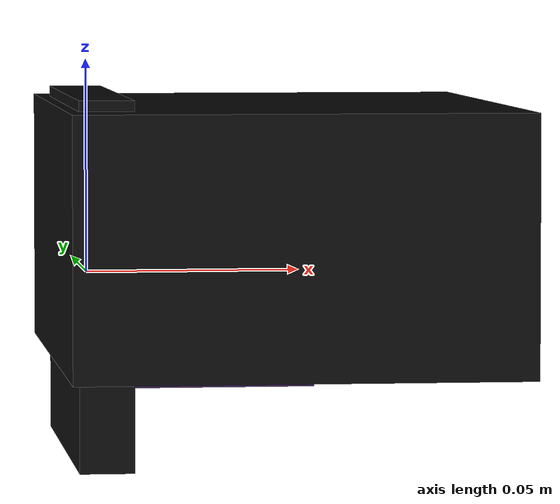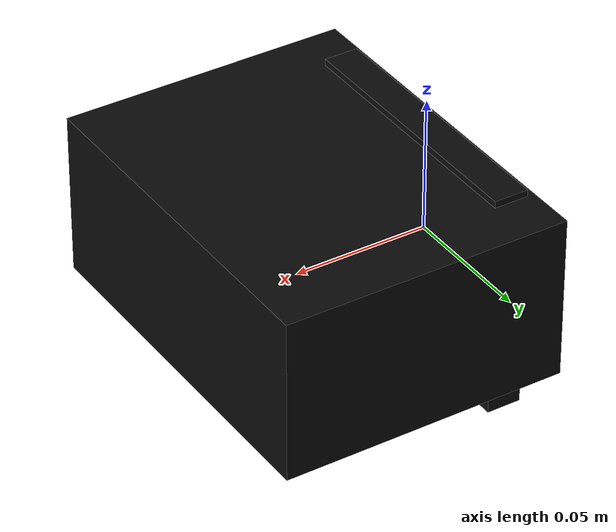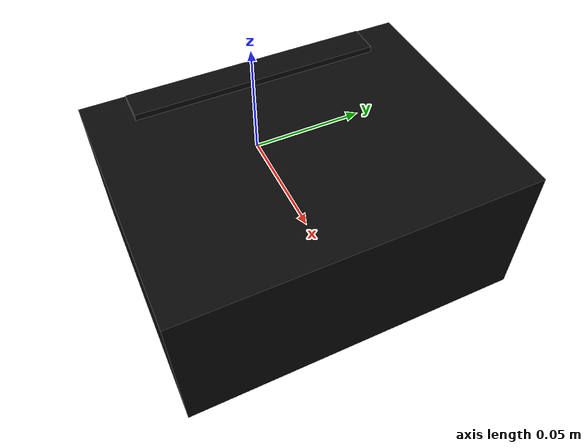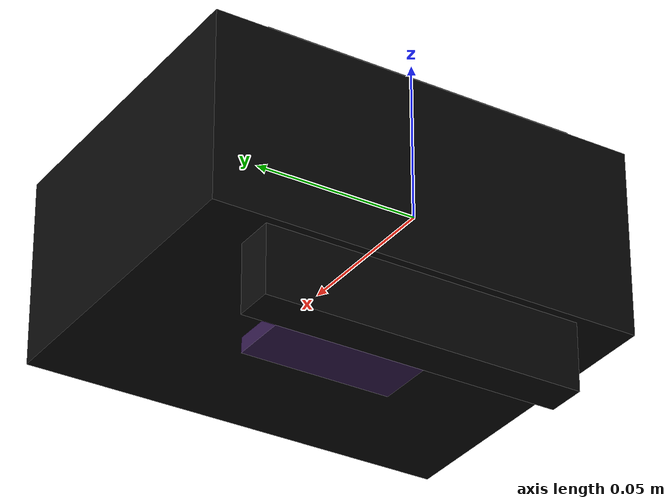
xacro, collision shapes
<?xml version="1.0"?>
<robot name="sensor_suite" xmlns:xacro="http://www.ros.org/wiki/xacro">

    <!-- ********************[ PROPERTIES ]******************** -->

    <!-- Common -->
    <xacro:property name="PI" value="3.14159265359"/>

    <!-- Mounts -->
    <xacro:property name="m_lidar_L" value="0.012514"/>
    <xacro:property name="m_lidar_W" value="0.100000"/>
    <xacro:property name="m_lidar_H" value="0.084000"/>
    <xacro:property name="m_lidar_m" value="0.009"/>

    <xacro:property name="m_camera_L" value="0.104349"/>
    <xacro:property name="m_camera_W" value="0.135861"/>
    <xacro:property name="m_camera_H" value="0.059941"/>
    <xacro:property name="m_camera_m" value="0.056"/>

    <!-- Spinning 2D LIDAR (SF45-B, LightWare) -->
    <xacro:property name="lidar_W" value="0.048462"/>
    <xacro:property name="lidar_H" value="0.043979"/>
    <xacro:property name="lidar_L" value="0.050587"/>
    <xacro:property name="lidar_m" value="0.058"/>

    <!-- RGB-D camera (RealSense D456, Intel) -->
    <xacro:property name="camera_W" value="0.123999"/>
    <xacro:property name="camera_H" value="0.029093"/>
    <xacro:property name="camera_L" value="0.026004"/>
    <xacro:property name="camera_m" value="0.116"/>

    <!-- ********************[ MATERIALS ]******************** -->

    <material name="black">
        <color rgba="${10/255} ${10/255} ${10/255} 1"/>
    </material>
    <material name="purple">
        <color rgba="${50/255} ${25/255} ${75/255} 1"/>
      </material>
    <material name="silver">
        <color rgba="${180/255} ${180/255} ${180/255} 1"/>
    </material>

    <!-- ********************[ MACROS ]******************** -->

    <xacro:macro name="box_inertia" params="m x y z">
        <inertial>
            <mass value="${m}"/>
            <inertia ixx="${(m/12) * (y*y + z*z)}" ixy="0.0" ixz="0.0"
                     iyy="${(m/12) * (x*x + z*z)}" iyz="0.0"
                     izz="${(m/12) * (x*x + y*y)}"/>
        </inertial>
    </xacro:macro>

    <xacro:macro name="cylinder_inertia" params="m r h">
        <inertial>
            <mass value="${m}"/>
            <inertia ixx="${(m/12) * (3*r*r + h*h)}" ixy = "0" ixz = "0"
                     iyy="${(m/12) * (3*r*r + h*h)}" iyz = "0"
                     izz="${(m/2) * (r*r)}"/>
        </inertial>
    </xacro:macro>

    <xacro:macro name="sphere_inertia" params="m r">
        <inertial>
            <mass value="${m}"/>
            <inertia ixx="${(2/5) * m * (r*r)}" ixy="0.0" ixz="0.0"
                     iyy="${(2/5) * m * (r*r)}" iyz="0.0"
                     izz="${(2/5) * m * (r*r)}"/>
        </inertial>
    </xacro:macro>

    <!-- ********************[ LINKS ]******************** -->

    <!-- Base Link -->
    <link name="sensor_suite_base_link"/>

    <!-- LIDAR Mount -->
    <link name="mount_lidar_link">
        <visual>
            <origin xyz="0 0 0" rpy="${PI/2} 0 ${PI/2}"/>
            <geometry>
                <mesh filename="package://libra/meshes/mount_g-lidar.stl" scale="0.001 0.001 0.001"/>
            </geometry>
            <material name="black"/>
        </visual>

        <collision>
            <origin xyz="0 0 0" rpy="0 0 0"/>
            <geometry>
                <box size="${m_lidar_L} ${m_lidar_W} ${m_lidar_H}"/>
            </geometry>
        </collision>

        <xacro:box_inertia m="${m_lidar_m}"
                           x="${m_lidar_L}"
                           y="${m_lidar_W}"
                           z="${m_lidar_H}"/>
    </link>

    <!-- LIDAR -->
    <link name="lidar_link">
        <visual>
            <origin xyz="0.013602 0 0.028351" rpy="0 0 -${PI/2}"/>
            <geometry>
                <mesh filename="package://libra/meshes/lidar_sf45b-simplified.stl" scale="0.001 0.001 0.001"/>
            </geometry>
            <material name="purple"/>
        </visual>

        <collision>
            <origin xyz="0 0 ${lidar_H/2}" rpy="0 0 0"/>
            <geometry>
                <box size="${lidar_L} ${lidar_W} ${lidar_H}"/>
            </geometry>
        </collision>

        <xacro:box_inertia m="${lidar_m}"
                           x="${lidar_L}"
                           y="${lidar_W}"
                           z="${lidar_H}"/>
    </link>

    <!-- Camera Mount -->
    <link name="mount_camera_link">
        <visual>
            <origin xyz="0 0 0" rpy="-${PI/2} 0 ${PI/2}"/>
            <geometry>
                <mesh filename="package://libra/meshes/mount_g-realsense.stl" scale="0.001 0.001 0.001"/>
            </geometry>
            <material name="black"/>
        </visual>

        <collision>
            <origin xyz="0.045175 0 0.009540" rpy="0 0 0"/>
            <geometry>
                <box size="${m_camera_L} ${m_camera_W} ${m_camera_H}"/>
            </geometry>
        </collision>

        <xacro:box_inertia m="${m_camera_m}"
                           x="${m_camera_L}"
                           y="${m_camera_W}"
                           z="${m_camera_H}"/>
    </link>

    <!-- Camera -->
    <link name="camera_link">
        <visual>
            <origin xyz="0.026 0 0" rpy="${PI/2} 0 ${PI/2}"/>
            <geometry>
                <mesh filename="package://libra/meshes/realsense_d456.stl" scale="0.001 0.001 0.001"/>
            </geometry>
            <material name="silver"/>
        </visual>

        <collision>
            <origin xyz="${camera_L/2} 0 0" rpy="0 0 0"/>
            <geometry>
                <box size="${camera_L} ${camera_W} ${camera_H}"/>
            </geometry>
        </collision>

        <xacro:box_inertia m="${camera_m}"
                           x="${camera_L}"
                           y="${camera_W}"
                           z="${camera_H}"/>
    </link>

    <!-- ********************[ JOINTS ]******************** -->
    <!-- NOTE: X = forward/red, Y = left/green, Z = upwards/blue -->

    <joint name="base_to_mount_lidar" type="fixed">
        <parent link="sensor_suite_base_link"/>
        <child link="mount_lidar_link"/>
        <origin xyz="0.001 0 0" rpy="0 0 0"/>  <!-- accounts for mounting bracket -->
    </joint>

    <joint name="mount_lidar_to_lidar" type="fixed">
        <parent link="mount_lidar_link"/>
        <child link="lidar_link"/>
        <origin xyz="0.006 0 0" rpy="0 ${PI/2} 0"/>  <!-- facing downwards-->
    </joint>

    <joint name="base_to_mount_camera" type="fixed">
        <parent link="sensor_suite_base_link"/>
        <child link="mount_camera_link"/>
        <origin xyz="-0.001 0 0" rpy="0 0 0"/>  <!-- accounts for mounting bracket -->
    </joint>

    <joint name="mount_camera_to_camera" type="fixed">
        <parent link="mount_camera_link"/>
        <child link="camera_link"/>
        <origin xyz="0.068267 0 0" rpy="${PI} 0 0"/>  <!-- upside-down -->
    </joint>

    <!-- ********************[ GAZEBO CONFIG ]******************** -->

    <gazebo reference="mount_lidar_link">
        <material>Gazebo/Black</material>
    </gazebo>

    <gazebo reference="lidar_link">
        <material>Gazebo/Purple</material>
    </gazebo>

    <gazebo reference="mount_camera_link">
        <material>Gazebo/Black</material>
    </gazebo>

    <gazebo reference="camera_link">
        <material>Gazebo/Grey</material>
    </gazebo>

</robot>
